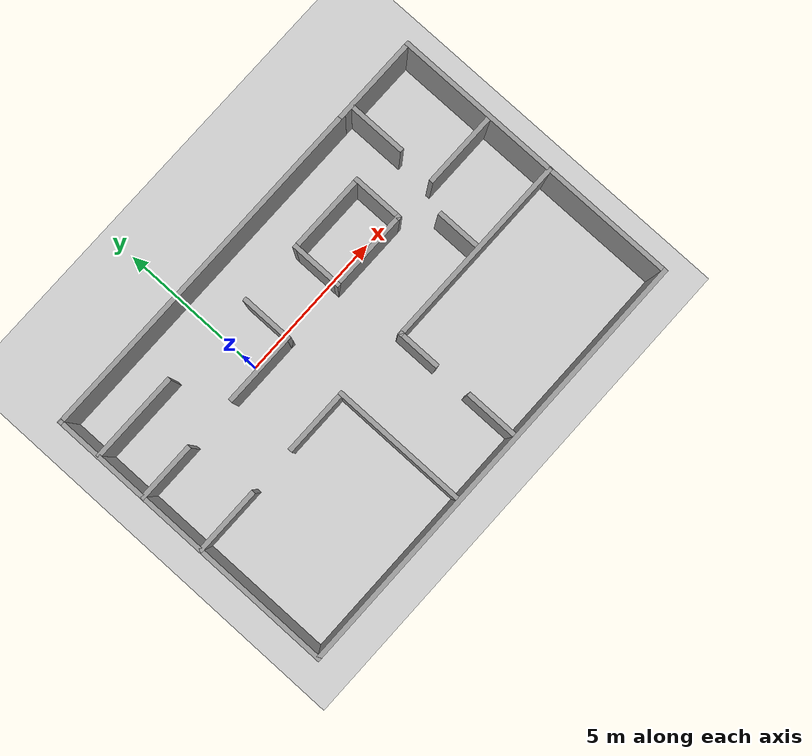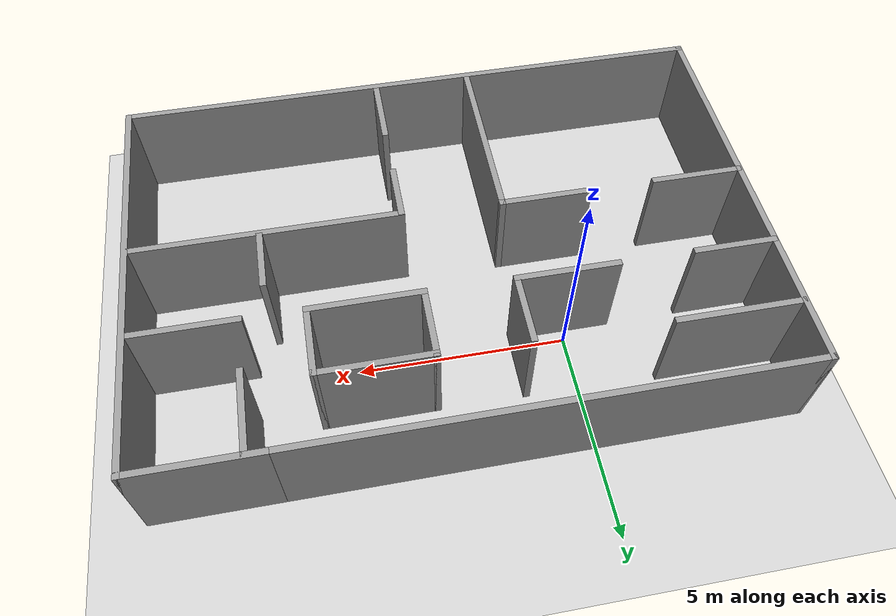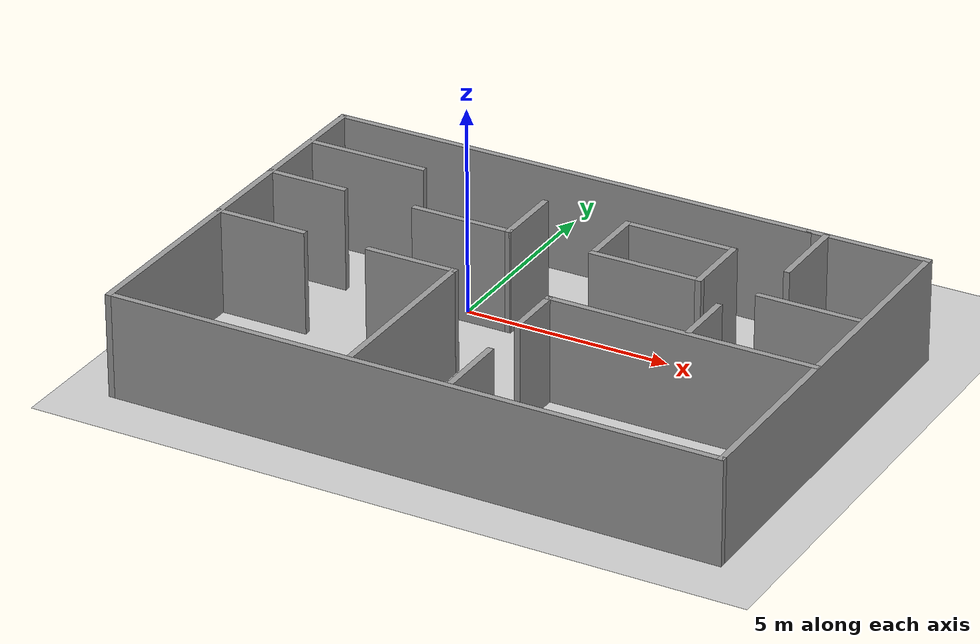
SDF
<sdf version="1.7">
 <world name="default">
  <light name="sun" type="directional">
   <pose>0 0 10 0 -0 0</pose>
   <diffuse>0.8 0.8 0.8 1</diffuse>
   <specular>0.2 0.2 0.2 1</specular>
   <attenuation>
    <range>1000</range>
    <constant>0.9</constant>
    <linear>0.01</linear>
    <quadratic>0.001</quadratic>
   </attenuation>
   <direction>-0.5 0.1 -0.9</direction>
   <spot><inner_angle>0</inner_angle><outer_angle>0</outer_angle><falloff>0</falloff></spot>
  </light>
  <model name="ground_plane">
   <static>1</static>
   <link name="link">
    <collision name="collision">
     <geometry><plane><normal>0 0 1</normal><size>100 100</size></plane></geometry>
     <surface>
      <contact><collide_bitmask>65535</collide_bitmask></contact>
      <friction><ode><mu>100</mu><mu2>50</mu2></ode></friction>
     </surface>
    </collision>
    <visual name="visual">
     <cast_shadows>0</cast_shadows>
     <geometry><plane><normal>0 0 1</normal><size>100 100</size></plane></geometry>
     <material>
      <script><uri>file://media/materials/scripts/gazebo.material</uri><name>Gazebo/Grey</name></script>
     </material>
    </visual>
   </link>
  </model>
  <gravity>0 0 -9.8</gravity>
  <magnetic_field>6e-06 2.3e-05 -4.2e-05</magnetic_field>
  <atmosphere type="adiabatic"/>
  <physics type="ode">
   <max_step_size>0.001</max_step_size>
   <real_time_factor>1</real_time_factor>
   <real_time_update_rate>1000</real_time_update_rate>
  </physics>
  <scene><ambient>0.4 0.4 0.4 1</ambient><background>0.7 0.7 0.7 1</background><shadows>1</shadows></scene>
  <audio><device>default</device></audio>
  <spherical_coordinates>
   <surface_model>EARTH_WGS84</surface_model>
   <latitude_deg>0</latitude_deg>
   <longitude_deg>0</longitude_deg>
   <elevation>0</elevation>
   <heading_deg>0</heading_deg>
  </spherical_coordinates>
  <model name="Maze">
   <pose>2.51705 -2.11113 0 0 -0 0</pose>
   <link name="Wall_11">
    <collision name="Wall_11_Collision">
     <geometry><box><size>12 0.15 2.5</size></box></geometry>
     <pose>0 0 1.25 0 -0 0</pose>
    </collision>
    <visual name="Wall_11_Visual">
     <pose>0 0 1.25 0 -0 0</pose>
     <geometry><box><size>12 0.15 2.5</size></box></geometry>
     <material>
      <script><uri>file://media/materials/scripts/gazebo.material</uri><name>Gazebo/Grey</name></script>
      <ambient>1 1 1 1</ambient>
     </material>
     <meta><layer>0</layer></meta>
    </visual>
    <pose>-1.425 4.925 0 0 -0 0</pose>
   </link>
   <link name="Wall_13">
    <collision name="Wall_13_Collision">
     <geometry><box><size>3 0.15 2.5</size></box></geometry>
     <pose>0 0 1.25 0 -0 0</pose>
    </collision>
    <visual name="Wall_13_Visual">
     <pose>0 0 1.25 0 -0 0</pose>
     <geometry><box><size>3 0.15 2.5</size></box></geometry>
     <material>
      <script><uri>file://media/materials/scripts/gazebo.material</uri><name>Gazebo/Grey</name></script>
      <ambient>1 1 1 1</ambient>
     </material>
     <meta><layer>0</layer></meta>
    </visual>
    <pose>5.925 4.925 0 0 -0 0</pose>
   </link>
   <link name="Wall_15">
    <collision name="Wall_15_Collision">
     <geometry><box><size>10 0.15 2.5</size></box></geometry>
     <pose>0 0 1.25 0 -0 0</pose>
    </collision>
    <visual name="Wall_15_Visual">
     <pose>0 0 1.25 0 -0 0</pose>
     <geometry><box><size>10 0.15 2.5</size></box></geometry>
     <material>
      <script><uri>file://media/materials/scripts/gazebo.material</uri><name>Gazebo/Grey</name></script>
      <ambient>1 1 1 1</ambient>
     </material>
     <meta><layer>0</layer></meta>
    </visual>
    <pose>-7.35 0 0 0 -0 -1.5708</pose>
   </link>
   <link name="Wall_20">
    <collision name="Wall_20_Collision">
     <geometry><box><size>10 0.15 2.5</size></box></geometry>
     <pose>0 0 1.25 0 -0 0</pose>
    </collision>
    <visual name="Wall_20_Visual">
     <pose>0 0 1.25 0 -0 0</pose>
     <geometry><box><size>10 0.15 2.5</size></box></geometry>
     <material>
      <script><uri>file://media/materials/scripts/gazebo.material</uri><name>Gazebo/Grey</name></script>
      <ambient>1 1 1 1</ambient>
     </material>
     <meta><layer>0</layer></meta>
    </visual>
    <pose>7.35 0 0 0 -0 -1.5708</pose>
   </link>
   <link name="Wall_21">
    <collision name="Wall_21_Collision">
     <geometry><box><size>14.85 0.15 2.5</size></box></geometry>
     <pose>0 0 1.25 0 -0 0</pose>
    </collision>
    <visual name="Wall_21_Visual">
     <pose>0 0 1.25 0 -0 0</pose>
     <geometry><box><size>14.85 0.15 2.5</size></box></geometry>
     <material>
      <script><uri>file://media/materials/scripts/gazebo.material</uri><name>Gazebo/Grey</name></script>
      <ambient>1 1 1 1</ambient>
     </material>
     <meta><layer>0</layer></meta>
    </visual>
    <pose>0 -4.925 0 0 -0 3.14159</pose>
   </link>
   <link name="Wall_23">
    <collision name="Wall_23_Collision">
     <geometry><box><size>4.5 0.15 2.5</size></box></geometry>
     <pose>0 0 1.25 0 -0 0</pose>
    </collision>
    <visual name="Wall_23_Visual">
     <pose>0 0 1.25 0 -0 0</pose>
     <geometry><box><size>4.5 0.15 2.5</size></box></geometry>
     <material>
      <script><uri>file://media/materials/scripts/gazebo.material</uri><name>Gazebo/Grey</name></script>
      <ambient>1 1 1 1</ambient>
     </material>
     <meta><layer>0</layer></meta>
    </visual>
    <pose>-1.42738 -2.60599 0 0 -0 1.5708</pose>
   </link>
   <link name="Wall_24">
    <collision name="Wall_24_Collision">
     <geometry><box><size>2.25 0.15 2.5</size></box></geometry>
     <pose>0 0 1.25 0 -0 0</pose>
    </collision>
    <visual name="Wall_24_Visual">
     <pose>0 0 1.25 0 -0 0</pose>
     <geometry><box><size>2.25 0.15 2.5</size></box></geometry>
     <material>
      <script><uri>file://media/materials/scripts/gazebo.material</uri><name>Gazebo/Grey</name></script>
      <ambient>1 1 1 1</ambient>
     </material>
     <meta><layer>0</layer></meta>
    </visual>
    <pose>-2.47738 -0.430993 0 0 -0 3.14159</pose>
   </link>
   <link name="Wall_27">
    <collision name="Wall_27_Collision">
     <geometry><box><size>2.25 0.15 2.5</size></box></geometry>
     <pose>0 0 1.25 0 -0 0</pose>
    </collision>
    <visual name="Wall_27_Visual">
     <pose>0 0 1.25 0 -0 0</pose>
     <geometry><box><size>2.25 0.15 2.5</size></box></geometry>
     <material>
      <script><uri>file://media/materials/scripts/gazebo.material</uri><name>Gazebo/Grey</name></script>
      <ambient>1 1 1 1</ambient>
     </material>
     <meta><layer>0</layer></meta>
    </visual>
    <pose>-6.26455 -0.450198 0 0 -0 0</pose>
   </link>
   <link name="Wall_29">
    <collision name="Wall_29_Collision">
     <geometry><box><size>1.75 0.15 2.5</size></box></geometry>
     <pose>0 0 1.25 0 -0 0</pose>
    </collision>
    <visual name="Wall_29_Visual">
     <pose>0 0 1.25 0 -0 0</pose>
     <geometry><box><size>1.75 0.15 2.5</size></box></geometry>
     <material>
      <script><uri>file://media/materials/scripts/gazebo.material</uri><name>Gazebo/Grey</name></script>
      <ambient>1 1 1 1</ambient>
     </material>
     <meta><layer>0</layer></meta>
    </visual>
    <pose>0.985575 -3.98099 0 0 -0 1.5708</pose>
   </link>
   <link name="Wall_31">
    <collision name="Wall_31_Collision">
     <geometry><box><size>1.45489 0.15 2.5</size></box></geometry>
     <pose>0 0 1.25 0 -0 0</pose>
    </collision>
    <visual name="Wall_31_Visual">
     <pose>0 0 1.25 0 -0 0</pose>
     <geometry><box><size>1.45489 0.15 2.5</size></box></geometry>
     <material>
      <script><uri>file://media/materials/scripts/gazebo.material</uri><name>Gazebo/Grey</name></script>
      <ambient>1 1 1 1</ambient>
     </material>
     <meta><layer>0</layer></meta>
    </visual>
    <pose>0.974861 -1.2188 0 0 -0 1.5708</pose>
   </link>
   <link name="Wall_32">
    <collision name="Wall_32_Collision">
     <geometry><box><size>6.5 0.15 2.5</size></box></geometry>
     <pose>0 0 1.25 0 -0 0</pose>
    </collision>
    <visual name="Wall_32_Visual">
     <pose>0 0 1.25 0 -0 0</pose>
     <geometry><box><size>6.5 0.15 2.5</size></box></geometry>
     <material>
      <script><uri>file://media/materials/scripts/gazebo.material</uri><name>Gazebo/Grey</name></script>
      <ambient>1 1 1 1</ambient>
     </material>
     <meta><layer>0</layer></meta>
    </visual>
    <pose>4.14986 -0.543797 0 0 -0 0</pose>
   </link>
   <link name="Wall_35">
    <collision name="Wall_35_Collision">
     <geometry><box><size>2 0.15 2.5</size></box></geometry>
     <pose>0 0 1.25 0 -0 0</pose>
    </collision>
    <visual name="Wall_35_Visual">
     <pose>0 0 1.25 0 -0 0</pose>
     <geometry><box><size>2 0.15 2.5</size></box></geometry>
     <material>
      <script><uri>file://media/materials/scripts/gazebo.material</uri><name>Gazebo/Grey</name></script>
      <ambient>1 1 1 1</ambient>
     </material>
     <meta><layer>0</layer></meta>
    </visual>
    <pose>-6.41294 1.7597 0 0 -0 0</pose>
   </link>
   <link name="Wall_37">
    <collision name="Wall_37_Collision">
     <geometry><box><size>2.5 0.15 2.5</size></box></geometry>
     <pose>0 0 1.25 0 -0 0</pose>
    </collision>
    <visual name="Wall_37_Visual">
     <pose>0 0 1.25 0 -0 0</pose>
     <geometry><box><size>2.5 0.15 2.5</size></box></geometry>
     <material>
      <script><uri>file://media/materials/scripts/gazebo.material</uri><name>Gazebo/Grey</name></script>
      <ambient>1 1 1 1</ambient>
     </material>
     <meta><layer>0</layer></meta>
    </visual>
    <pose>-2.4488 1.77021 0 0 -0 0</pose>
   </link>
   <link name="Wall_39">
    <collision name="Wall_39_Collision">
     <geometry><box><size>2.75 0.15 2.5</size></box></geometry>
     <pose>0 0 1.25 0 -0 0</pose>
    </collision>
    <visual name="Wall_39_Visual">
     <pose>0 0 1.25 0 -0 0</pose>
     <geometry><box><size>2.75 0.15 2.5</size></box></geometry>
     <material>
      <script><uri>file://media/materials/scripts/gazebo.material</uri><name>Gazebo/Grey</name></script>
      <ambient>1 1 1 1</ambient>
     </material>
     <meta><layer>0</layer></meta>
    </visual>
    <pose>2.11679 1.7525 0 0 -0 0</pose>
   </link>
   <link name="Wall_41">
    <collision name="Wall_41_Collision">
     <geometry><box><size>2.5 0.15 2.5</size></box></geometry>
     <pose>0 0 1.25 0 -0 0</pose>
    </collision>
    <visual name="Wall_41_Visual">
     <pose>0 0 1.25 0 -0 0</pose>
     <geometry><box><size>2.5 0.15 2.5</size></box></geometry>
     <material>
      <script><uri>file://media/materials/scripts/gazebo.material</uri><name>Gazebo/Grey</name></script>
      <ambient>1 1 1 1</ambient>
     </material>
     <meta><layer>0</layer></meta>
    </visual>
    <pose>6.0462 1.74641 0 0 -0 0</pose>
   </link>
   <link name="Wall_43">
    <collision name="Wall_43_Collision">
     <geometry><box><size>1.5 0.15 2.5</size></box></geometry>
     <pose>0 0 1.25 0 -0 0</pose>
    </collision>
    <visual name="Wall_43_Visual">
     <pose>0 0 1.25 0 -0 0</pose>
     <geometry><box><size>1.5 0.15 2.5</size></box></geometry>
     <material>
      <script><uri>file://media/materials/scripts/gazebo.material</uri><name>Gazebo/Grey</name></script>
      <ambient>1 1 1 1</ambient>
     </material>
     <meta><layer>0</layer></meta>
    </visual>
    <pose>4.29856 0.216058 0 0 -0 1.5708</pose>
   </link>
   <link name="Wall_45">
    <collision name="Wall_45_Collision">
     <geometry><box><size>1.75 0.15 2.5</size></box></geometry>
     <pose>0 0 1.25 0 -0 0</pose>
    </collision>
    <visual name="Wall_45_Visual">
     <pose>0 0 1.25 0 -0 0</pose>
     <geometry><box><size>1.75 0.15 2.5</size></box></geometry>
     <material>
      <script><uri>file://media/materials/scripts/gazebo.material</uri><name>Gazebo/Grey</name></script>
      <ambient>1 1 1 1</ambient>
     </material>
     <meta><layer>0</layer></meta>
    </visual>
    <pose>-1.2738 2.57021 0 0 -0 1.5708</pose>
   </link>
   <link name="Wall_47">
    <collision name="Wall_47_Collision">
     <geometry><box><size>3 0.15 2.5</size></box></geometry>
     <pose>0 0 1.25 0 -0 0</pose>
    </collision>
    <visual name="Wall_47_Visual">
     <pose>0 0 1.25 0 -0 0</pose>
     <geometry><box><size>3 0.15 2.5</size></box></geometry>
     <material>
      <script><uri>file://media/materials/scripts/gazebo.material</uri><name>Gazebo/Grey</name></script>
      <ambient>1 1 1 1</ambient>
     </material>
     <meta><layer>0</layer></meta>
    </visual>
    <pose>-5.87669 3.47572 0 0 -0 0</pose>
   </link>
   <link name="Wall_49">
    <collision name="Wall_49_Collision">
     <geometry><box><size>2 0.15 2.5</size></box></geometry>
     <pose>0 0 1.25 0 -0 0</pose>
    </collision>
    <visual name="Wall_49_Visual">
     <pose>0 0 1.25 0 -0 0</pose>
     <geometry><box><size>2 0.15 2.5</size></box></geometry>
     <material>
      <script><uri>file://media/materials/scripts/gazebo.material</uri><name>Gazebo/Grey</name></script>
      <ambient>1 1 1 1</ambient>
     </material>
     <meta><layer>0</layer></meta>
    </visual>
    <pose>4.91096 3.95723 0 0 -0 -1.5708</pose>
   </link>
   <link name="Wall_54">
    <collision name="Wall_54_Collision">
     <geometry><box><size>1.75 0.15 2.5</size></box></geometry>
     <pose>0 0 1.25 0 -0 0</pose>
    </collision>
    <visual name="Wall_54_Visual">
     <pose>0 0 1.25 0 -0 0</pose>
     <geometry><box><size>1.75 0.15 2.5</size></box></geometry>
     <material>
      <script><uri>file://media/materials/scripts/gazebo.material</uri><name>Gazebo/Grey</name></script>
      <ambient>1 1 1 1</ambient>
     </material>
     <meta><layer>0</layer></meta>
    </visual>
    <pose>3.41679 2.5525 0 0 -0 -1.5708</pose>
   </link>
   <link name="Wall_56">
    <collision name="Wall_56_Collision">
     <geometry><box><size>1.75 0.15 2.5</size></box></geometry>
     <pose>0 0 1.25 0 -0 0</pose>
    </collision>
    <visual name="Wall_56_Visual">
     <pose>0 0 1.25 0 -0 0</pose>
     <geometry><box><size>1.75 0.15 2.5</size></box></geometry>
     <material>
      <script><uri>file://media/materials/scripts/gazebo.material</uri><name>Gazebo/Grey</name></script>
      <ambient>1 1 1 1</ambient>
     </material>
     <meta><layer>0</layer></meta>
    </visual>
    <pose>0.816794 2.5525 0 0 -0 1.5708</pose>
   </link>
   <link name="Wall_57">
    <collision name="Wall_57_Collision">
     <geometry><box><size>2.75 0.15 2.5</size></box></geometry>
     <pose>0 0 1.25 0 -0 0</pose>
    </collision>
    <visual name="Wall_57_Visual">
     <pose>0 0 1.25 0 -0 0</pose>
     <geometry><box><size>2.75 0.15 2.5</size></box></geometry>
     <material>
      <script><uri>file://media/materials/scripts/gazebo.material</uri><name>Gazebo/Grey</name></script>
      <ambient>1 1 1 1</ambient>
     </material>
     <meta><layer>0</layer></meta>
    </visual>
    <pose>2.11679 3.3525 0 0 -0 0</pose>
   </link>
   <link name="Wall_6">
    <collision name="Wall_6_Collision">
     <geometry><box><size>0.15 0.15 2.5</size></box></geometry>
     <pose>0 0 1.25 0 -0 0</pose>
    </collision>
    <visual name="Wall_6_Visual">
     <pose>0 0 1.25 0 -0 0</pose>
     <geometry><box><size>0.15 0.15 2.5</size></box></geometry>
     <material>
      <script><uri>file://media/materials/scripts/gazebo.material</uri><name>Gazebo/Grey</name></script>
      <ambient>1 1 1 1</ambient>
     </material>
     <meta><layer>0</layer></meta>
    </visual>
    <pose>-7.35 4.925 0 0 -0 0</pose>
   </link>
   <static>1</static>
  </model>
 </world>
</sdf>
